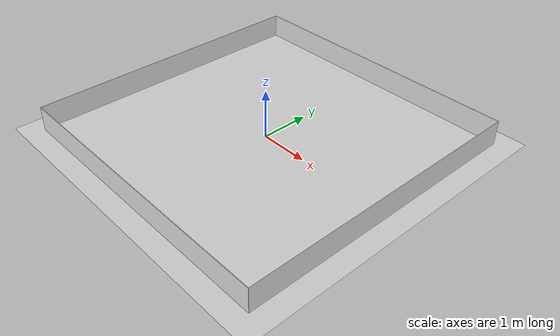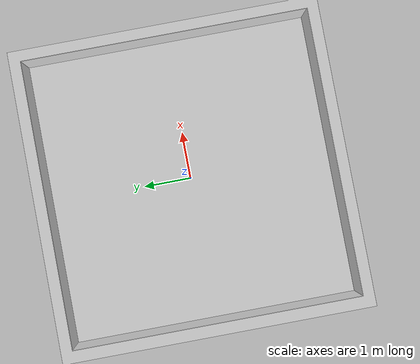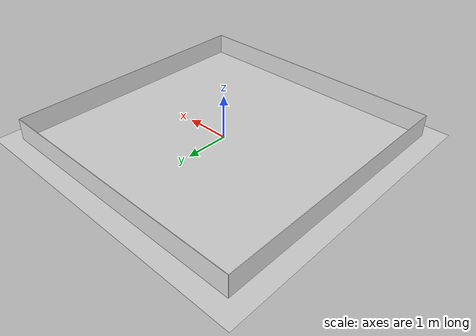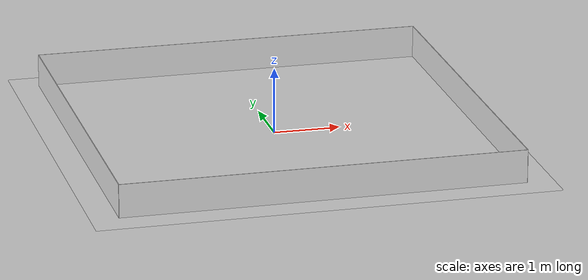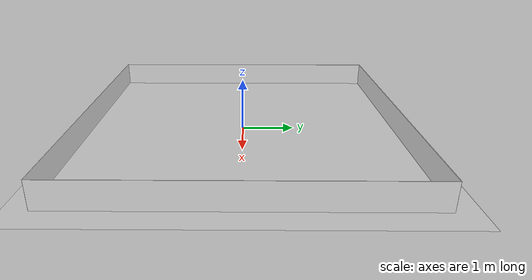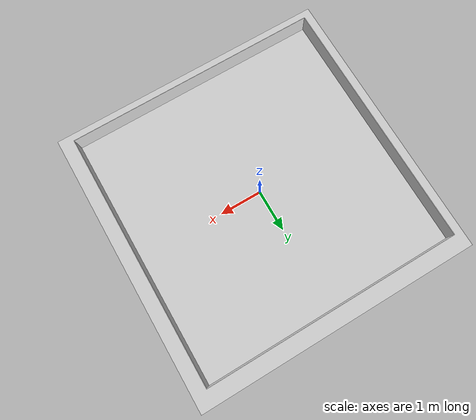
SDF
<sdf version='1.9'>
  <world name='empty'>
    <physics name='1ms' type='ignored'>
      <max_step_size>0.001</max_step_size>
      <real_time_factor>1</real_time_factor>
      <real_time_update_rate>1000</real_time_update_rate>
    </physics>

    <plugin name='gz::sim::systems::Physics' filename='ignition-gazebo-physics-system'/>
    <plugin name='gz::sim::systems::UserCommands' filename='ignition-gazebo-user-commands-system'/>
    <plugin name='gz::sim::systems::SceneBroadcaster' filename='ignition-gazebo-scene-broadcaster-system' />
    <plugin name='gz::sim::systems::Contact' filename='ignition-gazebo-contact-system'/>

    <gravity>0 0 -9.8</gravity>
    <magnetic_field>6e-06 2.3e-05 -4.2e-05</magnetic_field>
    <atmosphere type='adiabatic'/>

    <scene>
      <ambient>0.4 0.4 0.4 1</ambient>
      <background>0.7 0.7 0.7 1</background>
      <shadows>true</shadows>
    </scene>

    <model name='ground_plane'>
      <static>true</static>
      <link name='map'>
        <collision name='collision'>
          <geometry>
            <plane>
              <normal>0 0 1</normal>
              <size>6 6</size>
            </plane>
          </geometry>
          <surface>
            <friction>
              <ode/>
            </friction>
            <bounce/>
            <contact/>
          </surface>
        </collision>
        <visual name='visual'>
          <geometry>
            <plane>
              <normal>0 0 1</normal>
              <size>6 6</size>
            </plane>
          </geometry>
          <material>
            <ambient>0.8 0.8 0.8 1</ambient>
            <diffuse>0.8 0.8 0.8 1</diffuse>
            <specular>0.8 0.8 0.8 1</specular>
          </material>
        </visual>
        <pose>0 0 0 0 -0 0</pose>
        <inertial>
          <pose>0 0 0 0 -0 0</pose>
          <mass>1</mass>
          <inertia>
            <ixx>1</ixx>
            <ixy>0</ixy>
            <ixz>0</ixz>
            <iyy>1</iyy>
            <iyz>0</iyz>
            <izz>1</izz>
          </inertia>
        </inertial>
        <enable_wind>false</enable_wind>
      </link>
      <pose>0 0 0 0 -0 0</pose>

      <plugin
        filename="ignition-gazebo-pose-publisher-system"
        name="ignition::gazebo::systems::PosePublisher">
        <publish_link_pose>true</publish_link_pose>
      </plugin>

      <self_collide>false</self_collide>
    </model>
    <model name='wall_n'>
      <pose>3 -0 0.25 0 -0 1.5708</pose>
      <link name='wall_n_link'>
        <inertial>
          <inertia>
            <ixx>0.16666</ixx>
            <ixy>0</ixy>
            <ixz>0</ixz>
            <iyy>0.16666</iyy>
            <iyz>0</iyz>
            <izz>0.16666</izz>
          </inertia>
          <mass>1</mass>
          <pose>0 0 0 0 -0 0</pose>
        </inertial>
        <collision name='wall_n_collision'>
          <geometry>
            <box>
              <size>6 0.01 0.5</size>
            </box>
          </geometry>
          <surface>
            <friction>
              <ode/>
            </friction>
            <bounce/>
            <contact/>
          </surface>
        </collision>
        <visual name='wall_n_visual'>
          <geometry>
            <box>
              <size>6 0.01 0.5</size>
            </box>
          </geometry>
          <material>
            <ambient>0.3 0.3 0.3 1</ambient>
            <diffuse>0.9 0.9 0.9 1</diffuse>
            <specular>1 1 1 1</specular>
          </material>
        </visual>
        <pose>0 0 0 0 -0 0</pose>
        <enable_wind>false</enable_wind>
      </link>
      <static>true</static>
      <self_collide>false</self_collide>
    </model>
    <model name='wall_e'>
      <pose>0 -3 0.25 0 -0 0</pose>
      <link name='wall_e_link'>
        <inertial>
          <inertia>
            <ixx>0.16666</ixx>
            <ixy>0</ixy>
            <ixz>0</ixz>
            <iyy>0.16666</iyy>
            <iyz>0</iyz>
            <izz>0.16666</izz>
          </inertia>
          <mass>1</mass>
          <pose>0 0 0 0 -0 0</pose>
        </inertial>
        <collision name='wall_e_collision'>
          <geometry>
            <box>
              <size>6 0.01 0.5</size>
            </box>
          </geometry>
          <surface>
            <friction>
              <ode/>
            </friction>
            <bounce/>
            <contact/>
          </surface>
        </collision>
        <visual name='wall_e_visual'>
          <geometry>
            <box>
              <size>6 0.01 0.5</size>
            </box>
          </geometry>
          <material>
            <ambient>0.3 0.3 0.3 1</ambient>
            <diffuse>0.9 0.9 0.9 1</diffuse>
            <specular>1 1 1 1</specular>
          </material>
        </visual>
        <pose>0 0 0 0 -0 0</pose>
        <enable_wind>false</enable_wind>
      </link>
      <static>true</static>
      <self_collide>false</self_collide>
    </model>
    <model name='wall_s'>
      <pose>-3 -0 0.25 0 -0 1.5708</pose>
      <link name='wall_s_link'>
        <inertial>
          <inertia>
            <ixx>0.16666</ixx>
            <ixy>0</ixy>
            <ixz>0</ixz>
            <iyy>0.16666</iyy>
            <iyz>0</iyz>
            <izz>0.16666</izz>
          </inertia>
          <mass>1</mass>
          <pose>0 0 0 0 -0 0</pose>
        </inertial>
        <collision name='wall_s_collision'>
          <geometry>
            <box>
              <size>6 0.01 0.5</size>
            </box>
          </geometry>
          <surface>
            <friction>
              <ode/>
            </friction>
            <bounce/>
            <contact/>
          </surface>
        </collision>
        <visual name='wall_s_visual'>
          <geometry>
            <box>
              <size>6 0.01 0.5</size>
            </box>
          </geometry>
          <material>
            <ambient>0.3 0.3 0.3 1</ambient>
            <diffuse>0.9 0.9 0.9 1</diffuse>
            <specular>1 1 1 1</specular>
          </material>
        </visual>
        <pose>0 0 0 0 -0 0</pose>
        <enable_wind>false</enable_wind>
      </link>
      <static>true</static>
      <self_collide>false</self_collide>
    </model>
    <model name='wall_w'>
      <pose>0 3 0.25 0 -0 0</pose>
      <link name='wall_w_link'>
        <inertial>
          <inertia>
            <ixx>0.16666</ixx>
            <ixy>0</ixy>
            <ixz>0</ixz>
            <iyy>0.16666</iyy>
            <iyz>0</iyz>
            <izz>0.16666</izz>
          </inertia>
          <mass>1</mass>
          <pose>0 0 0 0 -0 0</pose>
        </inertial>
        <collision name='wall_w_collision'>
          <geometry>
            <box>
              <size>6 0.01 0.5</size>
            </box>
          </geometry>
          <surface>
            <friction>
              <ode/>
            </friction>
            <bounce/>
            <contact/>
          </surface>
        </collision>
        <visual name='wall_w_visual'>
          <geometry>
            <box>
              <size>6 0.01 0.5</size>
            </box>
          </geometry>
          <material>
            <ambient>0.3 0.3 0.3 1</ambient>
            <diffuse>0.9 0.9 0.9 1</diffuse>
            <specular>1 1 1 1</specular>
          </material>
        </visual>
        <pose>0 0 0 0 -0 0</pose>
        <enable_wind>false</enable_wind>
      </link>
      <static>true</static>
      <self_collide>false</self_collide>
    </model>
    <light name='sun' type='directional'>
      <pose>0 0 10 0 -0 0</pose>
      <cast_shadows>true</cast_shadows>
      <intensity>1</intensity>
      <direction>-0.5 0.1 -0.9</direction>
      <diffuse>0.8 0.8 0.8 1</diffuse>
      <specular>0.2 0.2 0.2 1</specular>
      <attenuation>
        <range>1000</range>
        <linear>0.01</linear>
        <constant>0.90000000000000002</constant>
        <quadratic>0.001</quadratic>
      </attenuation>
      <spot>
        <inner_angle>0</inner_angle>
        <outer_angle>0</outer_angle>
        <falloff>0</falloff>
      </spot>
    </light>
  </world>
</sdf>
